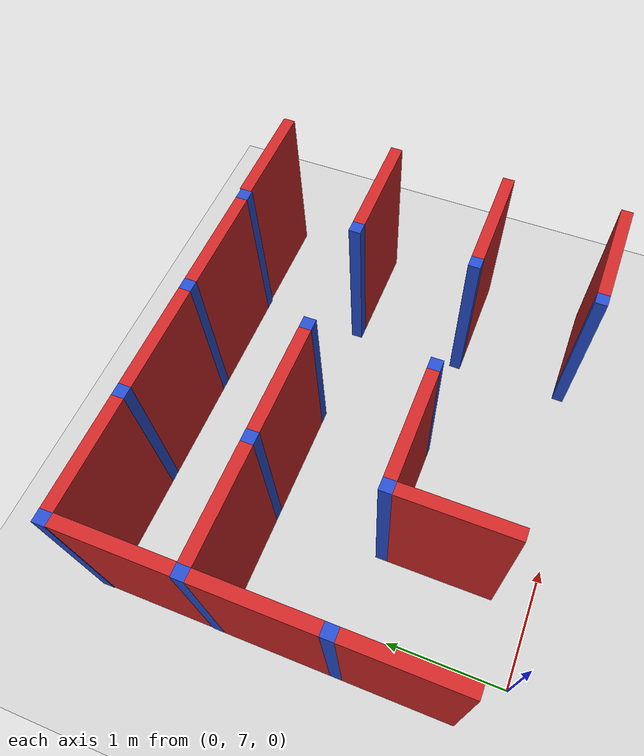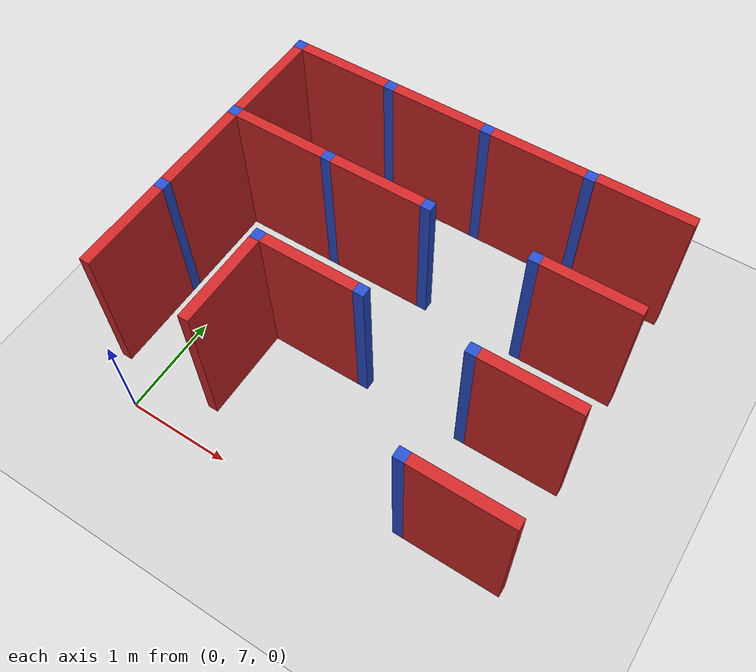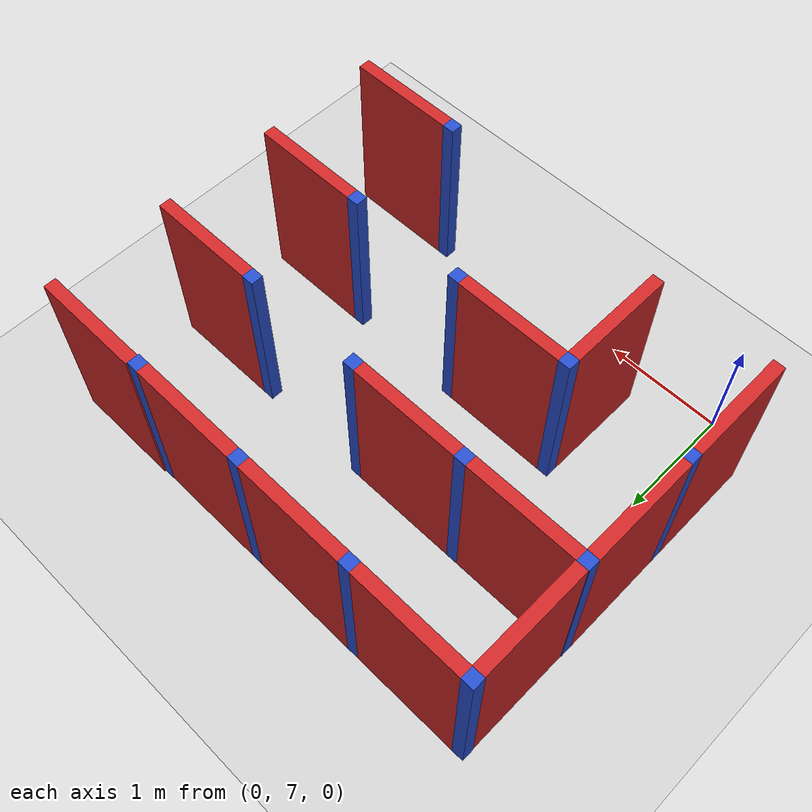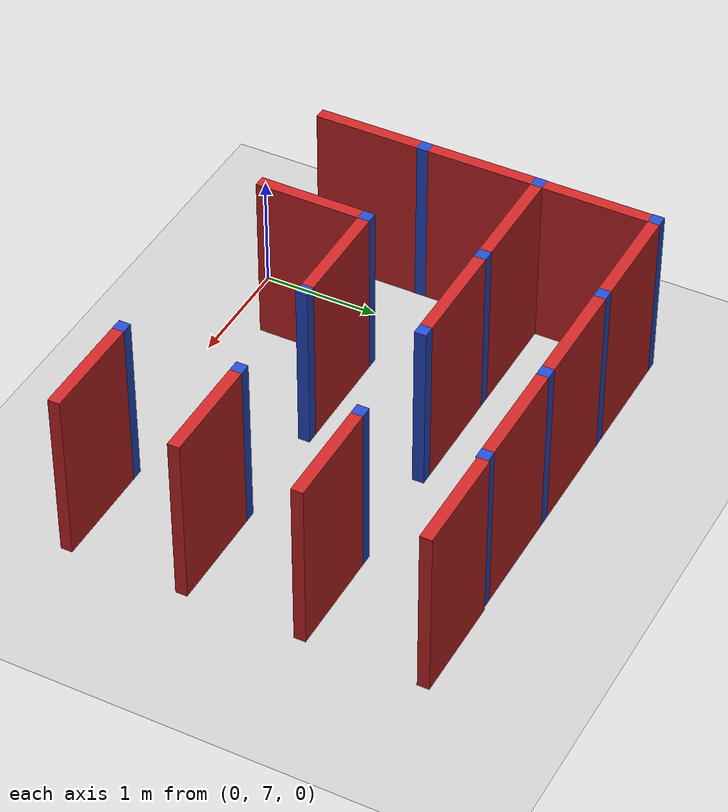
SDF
<sdf version="1.7">
 <world name="default">
  <model name="ground_plane">
   <static>1</static>
   <link name="link">
    <collision name="collision">
     <geometry><plane><normal>0 0 1</normal><size>100 100</size></plane></geometry>
     <surface><friction><ode><mu>100</mu><mu2>50</mu2></ode></friction></surface>
    </collision>
    <visual name="visual">
     <cast_shadows>0</cast_shadows>
     <geometry><plane><normal>0 0 1</normal><size>100 100</size></plane></geometry>
     <material>
      <script><uri>file://media/materials/scripts/gazebo.material</uri><name>Gazebo/Grey</name></script>
     </material>
    </visual>
   </link>
  </model>
  <model name="maze_demo">
   <link name="Joint_5_-5">
    <pose>5 -5 0 0 -0 0</pose>
    <visual name="Wall_2_Visual">
     <pose>0 0 0.75 0 -0 0</pose>
     <geometry><box><size>0.1 0.1 1.5</size></box></geometry>
     <material>
      <script><uri>file://media/materials/scripts/gazebo.material</uri><name>Gazebo/Blue</name></script>
      <ambient>0.996078 0.47451 0.0196078 1</ambient>
      <shader type="pixel"/>
     </material>
     <meta><layer>0</layer></meta>
    </visual>
    <collision name="Wall_2_Collision">
     <pose>0 0 0.75 0 -0 0</pose>
     <geometry><box><size>0.1 0.1 1.5</size></box></geometry>
     <surface>
      <friction>
       <ode><mu>1</mu><mu2>1</mu2><fdir1>0 0 0</fdir1><slip1>0</slip1><slip2>0</slip2></ode>
       <torsional>
        <coefficient>1</coefficient>
        <patch_radius>0</patch_radius>
        <surface_radius>0</surface_radius>
        <use_patch_radius>1</use_patch_radius>
        <ode><slip>0</slip></ode>
       </torsional>
      </friction>
      <bounce><restitution_coefficient>0</restitution_coefficient><threshold>1e+06</threshold></bounce>
      <contact>
       <collide_without_contact>0</collide_without_contact>
       <collide_without_contact_bitmask>1</collide_without_contact_bitmask>
       <collide_bitmask>1</collide_bitmask>
       <ode>
        <soft_cfm>0</soft_cfm>
        <soft_erp>0.2</soft_erp>
        <kp>1e+13</kp>
        <kd>1</kd>
        <max_vel>0.01</max_vel>
        <min_depth>0</min_depth>
       </ode>
       <bullet>
        <split_impulse>1</split_impulse>
        <split_impulse_penetration_threshold>-0.01</split_impulse_penetration_threshold>
        <soft_cfm>0</soft_cfm>
        <soft_erp>0.2</soft_erp>
        <kp>1e+13</kp>
        <kd>1</kd>
       </bullet>
      </contact>
     </surface>
    </collision>
   </link>
   <link name="Joint_5_-6">
    <pose>5 -6 0 0 -0 0</pose>
    <visual name="Wall_2_Visual">
     <pose>0 0 0.75 0 -0 0</pose>
     <geometry><box><size>0.1 0.1 1.5</size></box></geometry>
     <material>
      <script><uri>file://media/materials/scripts/gazebo.material</uri><name>Gazebo/Blue</name></script>
      <ambient>0.996078 0.47451 0.0196078 1</ambient>
      <shader type="pixel"/>
     </material>
     <meta><layer>0</layer></meta>
    </visual>
    <collision name="Wall_2_Collision">
     <pose>0 0 0.75 0 -0 0</pose>
     <geometry><box><size>0.1 0.1 1.5</size></box></geometry>
     <surface>
      <friction>
       <ode><mu>1</mu><mu2>1</mu2><fdir1>0 0 0</fdir1><slip1>0</slip1><slip2>0</slip2></ode>
       <torsional>
        <coefficient>1</coefficient>
        <patch_radius>0</patch_radius>
        <surface_radius>0</surface_radius>
        <use_patch_radius>1</use_patch_radius>
        <ode><slip>0</slip></ode>
       </torsional>
      </friction>
      <bounce><restitution_coefficient>0</restitution_coefficient><threshold>1e+06</threshold></bounce>
      <contact>
       <collide_without_contact>0</collide_without_contact>
       <collide_without_contact_bitmask>1</collide_without_contact_bitmask>
       <collide_bitmask>1</collide_bitmask>
       <ode>
        <soft_cfm>0</soft_cfm>
        <soft_erp>0.2</soft_erp>
        <kp>1e+13</kp>
        <kd>1</kd>
        <max_vel>0.01</max_vel>
        <min_depth>0</min_depth>
       </ode>
       <bullet>
        <split_impulse>1</split_impulse>
        <split_impulse_penetration_threshold>-0.01</split_impulse_penetration_threshold>
        <soft_cfm>0</soft_cfm>
        <soft_erp>0.2</soft_erp>
        <kp>1e+13</kp>
        <kd>1</kd>
       </bullet>
      </contact>
     </surface>
    </collision>
   </link>
   <link name="Joint_5_-7">
    <pose>5 -7 0 0 -0 0</pose>
    <visual name="Wall_2_Visual">
     <pose>0 0 0.75 0 -0 0</pose>
     <geometry><box><size>0.1 0.1 1.5</size></box></geometry>
     <material>
      <script><uri>file://media/materials/scripts/gazebo.material</uri><name>Gazebo/Blue</name></script>
      <ambient>0.996078 0.47451 0.0196078 1</ambient>
      <shader type="pixel"/>
     </material>
     <meta><layer>0</layer></meta>
    </visual>
    <collision name="Wall_2_Collision">
     <pose>0 0 0.75 0 -0 0</pose>
     <geometry><box><size>0.1 0.1 1.5</size></box></geometry>
     <surface>
      <friction>
       <ode><mu>1</mu><mu2>1</mu2><fdir1>0 0 0</fdir1><slip1>0</slip1><slip2>0</slip2></ode>
       <torsional>
        <coefficient>1</coefficient>
        <patch_radius>0</patch_radius>
        <surface_radius>0</surface_radius>
        <use_patch_radius>1</use_patch_radius>
        <ode><slip>0</slip></ode>
       </torsional>
      </friction>
      <bounce><restitution_coefficient>0</restitution_coefficient><threshold>1e+06</threshold></bounce>
      <contact>
       <collide_without_contact>0</collide_without_contact>
       <collide_without_contact_bitmask>1</collide_without_contact_bitmask>
       <collide_bitmask>1</collide_bitmask>
       <ode>
        <soft_cfm>0</soft_cfm>
        <soft_erp>0.2</soft_erp>
        <kp>1e+13</kp>
        <kd>1</kd>
        <max_vel>0.01</max_vel>
        <min_depth>0</min_depth>
       </ode>
       <bullet>
        <split_impulse>1</split_impulse>
        <split_impulse_penetration_threshold>-0.01</split_impulse_penetration_threshold>
        <soft_cfm>0</soft_cfm>
        <soft_erp>0.2</soft_erp>
        <kp>1e+13</kp>
        <kd>1</kd>
       </bullet>
      </contact>
     </surface>
    </collision>
   </link>
   <link name="Joint_6_-5">
    <pose>6 -5 0 0 -0 0</pose>
    <visual name="Wall_2_Visual">
     <pose>0 0 0.75 0 -0 0</pose>
     <geometry><box><size>0.1 0.1 1.5</size></box></geometry>
     <material>
      <script><uri>file://media/materials/scripts/gazebo.material</uri><name>Gazebo/Blue</name></script>
      <ambient>0.996078 0.47451 0.0196078 1</ambient>
      <shader type="pixel"/>
     </material>
     <meta><layer>0</layer></meta>
    </visual>
    <collision name="Wall_2_Collision">
     <pose>0 0 0.75 0 -0 0</pose>
     <geometry><box><size>0.1 0.1 1.5</size></box></geometry>
     <surface>
      <friction>
       <ode><mu>1</mu><mu2>1</mu2><fdir1>0 0 0</fdir1><slip1>0</slip1><slip2>0</slip2></ode>
       <torsional>
        <coefficient>1</coefficient>
        <patch_radius>0</patch_radius>
        <surface_radius>0</surface_radius>
        <use_patch_radius>1</use_patch_radius>
        <ode><slip>0</slip></ode>
       </torsional>
      </friction>
      <bounce><restitution_coefficient>0</restitution_coefficient><threshold>1e+06</threshold></bounce>
      <contact>
       <collide_without_contact>0</collide_without_contact>
       <collide_without_contact_bitmask>1</collide_without_contact_bitmask>
       <collide_bitmask>1</collide_bitmask>
       <ode>
        <soft_cfm>0</soft_cfm>
        <soft_erp>0.2</soft_erp>
        <kp>1e+13</kp>
        <kd>1</kd>
        <max_vel>0.01</max_vel>
        <min_depth>0</min_depth>
       </ode>
       <bullet>
        <split_impulse>1</split_impulse>
        <split_impulse_penetration_threshold>-0.01</split_impulse_penetration_threshold>
        <soft_cfm>0</soft_cfm>
        <soft_erp>0.2</soft_erp>
        <kp>1e+13</kp>
        <kd>1</kd>
       </bullet>
      </contact>
     </surface>
    </collision>
   </link>
   <link name="Joint_6_-6">
    <pose>6 -6 0 0 -0 0</pose>
    <visual name="Wall_2_Visual">
     <pose>0 0 0.75 0 -0 0</pose>
     <geometry><box><size>0.1 0.1 1.5</size></box></geometry>
     <material>
      <script><uri>file://media/materials/scripts/gazebo.material</uri><name>Gazebo/Blue</name></script>
      <ambient>0.996078 0.47451 0.0196078 1</ambient>
      <shader type="pixel"/>
     </material>
     <meta><layer>0</layer></meta>
    </visual>
    <collision name="Wall_2_Collision">
     <pose>0 0 0.75 0 -0 0</pose>
     <geometry><box><size>0.1 0.1 1.5</size></box></geometry>
     <surface>
      <friction>
       <ode><mu>1</mu><mu2>1</mu2><fdir1>0 0 0</fdir1><slip1>0</slip1><slip2>0</slip2></ode>
       <torsional>
        <coefficient>1</coefficient>
        <patch_radius>0</patch_radius>
        <surface_radius>0</surface_radius>
        <use_patch_radius>1</use_patch_radius>
        <ode><slip>0</slip></ode>
       </torsional>
      </friction>
      <bounce><restitution_coefficient>0</restitution_coefficient><threshold>1e+06</threshold></bounce>
      <contact>
       <collide_without_contact>0</collide_without_contact>
       <collide_without_contact_bitmask>1</collide_without_contact_bitmask>
       <collide_bitmask>1</collide_bitmask>
       <ode>
        <soft_cfm>0</soft_cfm>
        <soft_erp>0.2</soft_erp>
        <kp>1e+13</kp>
        <kd>1</kd>
        <max_vel>0.01</max_vel>
        <min_depth>0</min_depth>
       </ode>
       <bullet>
        <split_impulse>1</split_impulse>
        <split_impulse_penetration_threshold>-0.01</split_impulse_penetration_threshold>
        <soft_cfm>0</soft_cfm>
        <soft_erp>0.2</soft_erp>
        <kp>1e+13</kp>
        <kd>1</kd>
       </bullet>
      </contact>
     </surface>
    </collision>
   </link>
   <link name="Joint_6_-7">
    <pose>6 -7 0 0 -0 0</pose>
    <visual name="Wall_2_Visual">
     <pose>0 0 0.75 0 -0 0</pose>
     <geometry><box><size>0.1 0.1 1.5</size></box></geometry>
     <material>
      <script><uri>file://media/materials/scripts/gazebo.material</uri><name>Gazebo/Blue</name></script>
      <ambient>0.996078 0.47451 0.0196078 1</ambient>
      <shader type="pixel"/>
     </material>
     <meta><layer>0</layer></meta>
    </visual>
    <collision name="Wall_2_Collision">
     <pose>0 0 0.75 0 -0 0</pose>
     <geometry><box><size>0.1 0.1 1.5</size></box></geometry>
     <surface>
      <friction>
       <ode><mu>1</mu><mu2>1</mu2><fdir1>0 0 0</fdir1><slip1>0</slip1><slip2>0</slip2></ode>
       <torsional>
        <coefficient>1</coefficient>
        <patch_radius>0</patch_radius>
        <surface_radius>0</surface_radius>
        <use_patch_radius>1</use_patch_radius>
        <ode><slip>0</slip></ode>
       </torsional>
      </friction>
      <bounce><restitution_coefficient>0</restitution_coefficient><threshold>1e+06</threshold></bounce>
      <contact>
       <collide_without_contact>0</collide_without_contact>
       <collide_without_contact_bitmask>1</collide_without_contact_bitmask>
       <collide_bitmask>1</collide_bitmask>
       <ode>
        <soft_cfm>0</soft_cfm>
        <soft_erp>0.2</soft_erp>
        <kp>1e+13</kp>
        <kd>1</kd>
        <max_vel>0.01</max_vel>
        <min_depth>0</min_depth>
       </ode>
       <bullet>
        <split_impulse>1</split_impulse>
        <split_impulse_penetration_threshold>-0.01</split_impulse_penetration_threshold>
        <soft_cfm>0</soft_cfm>
        <soft_erp>0.2</soft_erp>
        <kp>1e+13</kp>
        <kd>1</kd>
       </bullet>
      </contact>
     </surface>
    </collision>
   </link>
   <link name="Joint_7_-5">
    <pose>7 -5 0 0 -0 0</pose>
    <visual name="Wall_2_Visual">
     <pose>0 0 0.75 0 -0 0</pose>
     <geometry><box><size>0.1 0.1 1.5</size></box></geometry>
     <material>
      <script><uri>file://media/materials/scripts/gazebo.material</uri><name>Gazebo/Blue</name></script>
      <ambient>0.996078 0.47451 0.0196078 1</ambient>
      <shader type="pixel"/>
     </material>
     <meta><layer>0</layer></meta>
    </visual>
    <collision name="Wall_2_Collision">
     <pose>0 0 0.75 0 -0 0</pose>
     <geometry><box><size>0.1 0.1 1.5</size></box></geometry>
     <surface>
      <friction>
       <ode><mu>1</mu><mu2>1</mu2><fdir1>0 0 0</fdir1><slip1>0</slip1><slip2>0</slip2></ode>
       <torsional>
        <coefficient>1</coefficient>
        <patch_radius>0</patch_radius>
        <surface_radius>0</surface_radius>
        <use_patch_radius>1</use_patch_radius>
        <ode><slip>0</slip></ode>
       </torsional>
      </friction>
      <bounce><restitution_coefficient>0</restitution_coefficient><threshold>1e+06</threshold></bounce>
      <contact>
       <collide_without_contact>0</collide_without_contact>
       <collide_without_contact_bitmask>1</collide_without_contact_bitmask>
       <collide_bitmask>1</collide_bitmask>
       <ode>
        <soft_cfm>0</soft_cfm>
        <soft_erp>0.2</soft_erp>
        <kp>1e+13</kp>
        <kd>1</kd>
        <max_vel>0.01</max_vel>
        <min_depth>0</min_depth>
       </ode>
       <bullet>
        <split_impulse>1</split_impulse>
        <split_impulse_penetration_threshold>-0.01</split_impulse_penetration_threshold>
        <soft_cfm>0</soft_cfm>
        <soft_erp>0.2</soft_erp>
        <kp>1e+13</kp>
        <kd>1</kd>
       </bullet>
      </contact>
     </surface>
    </collision>
   </link>
   <link name="Joint_7_-6">
    <pose>7 -6 0 0 -0 0</pose>
    <visual name="Wall_2_Visual">
     <pose>0 0 0.75 0 -0 0</pose>
     <geometry><box><size>0.1 0.1 1.5</size></box></geometry>
     <material>
      <script><uri>file://media/materials/scripts/gazebo.material</uri><name>Gazebo/Blue</name></script>
      <ambient>0.996078 0.47451 0.0196078 1</ambient>
      <shader type="pixel"/>
     </material>
     <meta><layer>0</layer></meta>
    </visual>
    <collision name="Wall_2_Collision">
     <pose>0 0 0.75 0 -0 0</pose>
     <geometry><box><size>0.1 0.1 1.5</size></box></geometry>
     <surface>
      <friction>
       <ode><mu>1</mu><mu2>1</mu2><fdir1>0 0 0</fdir1><slip1>0</slip1><slip2>0</slip2></ode>
       <torsional>
        <coefficient>1</coefficient>
        <patch_radius>0</patch_radius>
        <surface_radius>0</surface_radius>
        <use_patch_radius>1</use_patch_radius>
        <ode><slip>0</slip></ode>
       </torsional>
      </friction>
      <bounce><restitution_coefficient>0</restitution_coefficient><threshold>1e+06</threshold></bounce>
      <contact>
       <collide_without_contact>0</collide_without_contact>
       <collide_without_contact_bitmask>1</collide_without_contact_bitmask>
       <collide_bitmask>1</collide_bitmask>
       <ode>
        <soft_cfm>0</soft_cfm>
        <soft_erp>0.2</soft_erp>
        <kp>1e+13</kp>
        <kd>1</kd>
        <max_vel>0.01</max_vel>
        <min_depth>0</min_depth>
       </ode>
       <bullet>
        <split_impulse>1</split_impulse>
        <split_impulse_penetration_threshold>-0.01</split_impulse_penetration_threshold>
        <soft_cfm>0</soft_cfm>
        <soft_erp>0.2</soft_erp>
        <kp>1e+13</kp>
        <kd>1</kd>
       </bullet>
      </contact>
     </surface>
    </collision>
   </link>
   <link name="Joint_7_-7">
    <pose>7 -7 0 0 -0 0</pose>
    <visual name="Wall_2_Visual">
     <pose>0 0 0.75 0 -0 0</pose>
     <geometry><box><size>0.1 0.1 1.5</size></box></geometry>
     <material>
      <script><uri>file://media/materials/scripts/gazebo.material</uri><name>Gazebo/Blue</name></script>
      <ambient>0.996078 0.47451 0.0196078 1</ambient>
      <shader type="pixel"/>
     </material>
     <meta><layer>0</layer></meta>
    </visual>
    <collision name="Wall_2_Collision">
     <pose>0 0 0.75 0 -0 0</pose>
     <geometry><box><size>0.1 0.1 1.5</size></box></geometry>
     <surface>
      <friction>
       <ode><mu>1</mu><mu2>1</mu2><fdir1>0 0 0</fdir1><slip1>0</slip1><slip2>0</slip2></ode>
       <torsional>
        <coefficient>1</coefficient>
        <patch_radius>0</patch_radius>
        <surface_radius>0</surface_radius>
        <use_patch_radius>1</use_patch_radius>
        <ode><slip>0</slip></ode>
       </torsional>
      </friction>
      <bounce><restitution_coefficient>0</restitution_coefficient><threshold>1e+06</threshold></bounce>
      <contact>
       <collide_without_contact>0</collide_without_contact>
       <collide_without_contact_bitmask>1</collide_without_contact_bitmask>
       <collide_bitmask>1</collide_bitmask>
       <ode>
        <soft_cfm>0</soft_cfm>
        <soft_erp>0.2</soft_erp>
        <kp>1e+13</kp>
        <kd>1</kd>
        <max_vel>0.01</max_vel>
        <min_depth>0</min_depth>
       </ode>
       <bullet>
        <split_impulse>1</split_impulse>
        <split_impulse_penetration_threshold>-0.01</split_impulse_penetration_threshold>
        <soft_cfm>0</soft_cfm>
        <soft_erp>0.2</soft_erp>
        <kp>1e+13</kp>
        <kd>1</kd>
       </bullet>
      </contact>
     </surface>
    </collision>
   </link>
   <link name="Joint_8_-5">
    <pose>8 -5 0 0 -0 0</pose>
    <visual name="Wall_2_Visual">
     <pose>0 0 0.75 0 -0 0</pose>
     <geometry><box><size>0.1 0.1 1.5</size></box></geometry>
     <material>
      <script><uri>file://media/materials/scripts/gazebo.material</uri><name>Gazebo/Blue</name></script>
      <ambient>0.996078 0.47451 0.0196078 1</ambient>
      <shader type="pixel"/>
     </material>
     <meta><layer>0</layer></meta>
    </visual>
    <collision name="Wall_2_Collision">
     <pose>0 0 0.75 0 -0 0</pose>
     <geometry><box><size>0.1 0.1 1.5</size></box></geometry>
     <surface>
      <friction>
       <ode><mu>1</mu><mu2>1</mu2><fdir1>0 0 0</fdir1><slip1>0</slip1><slip2>0</slip2></ode>
       <torsional>
        <coefficient>1</coefficient>
        <patch_radius>0</patch_radius>
        <surface_radius>0</surface_radius>
        <use_patch_radius>1</use_patch_radius>
        <ode><slip>0</slip></ode>
       </torsional>
      </friction>
      <bounce><restitution_coefficient>0</restitution_coefficient><threshold>1e+06</threshold></bounce>
      <contact>
       <collide_without_contact>0</collide_without_contact>
       <collide_without_contact_bitmask>1</collide_without_contact_bitmask>
       <collide_bitmask>1</collide_bitmask>
       <ode>
        <soft_cfm>0</soft_cfm>
        <soft_erp>0.2</soft_erp>
        <kp>1e+13</kp>
        <kd>1</kd>
        <max_vel>0.01</max_vel>
        <min_depth>0</min_depth>
       </ode>
       <bullet>
        <split_impulse>1</split_impulse>
        <split_impulse_penetration_threshold>-0.01</split_impulse_penetration_threshold>
        <soft_cfm>0</soft_cfm>
        <soft_erp>0.2</soft_erp>
        <kp>1e+13</kp>
        <kd>1</kd>
       </bullet>
      </contact>
     </surface>
    </collision>
   </link>
   <link name="Joint_8_-6">
    <pose>8 -6 0 0 -0 0</pose>
    <visual name="Wall_2_Visual">
     <pose>0 0 0.75 0 -0 0</pose>
     <geometry><box><size>0.1 0.1 1.5</size></box></geometry>
     <material>
      <script><uri>file://media/materials/scripts/gazebo.material</uri><name>Gazebo/Blue</name></script>
      <ambient>0.996078 0.47451 0.0196078 1</ambient>
      <shader type="pixel"/>
     </material>
     <meta><layer>0</layer></meta>
    </visual>
    <collision name="Wall_2_Collision">
     <pose>0 0 0.75 0 -0 0</pose>
     <geometry><box><size>0.1 0.1 1.5</size></box></geometry>
     <surface>
      <friction>
       <ode><mu>1</mu><mu2>1</mu2><fdir1>0 0 0</fdir1><slip1>0</slip1><slip2>0</slip2></ode>
       <torsional>
        <coefficient>1</coefficient>
        <patch_radius>0</patch_radius>
        <surface_radius>0</surface_radius>
        <use_patch_radius>1</use_patch_radius>
        <ode><slip>0</slip></ode>
       </torsional>
      </friction>
      <bounce><restitution_coefficient>0</restitution_coefficient><threshold>1e+06</threshold></bounce>
      <contact>
       <collide_without_contact>0</collide_without_contact>
       <collide_without_contact_bitmask>1</collide_without_contact_bitmask>
       <collide_bitmask>1</collide_bitmask>
       <ode>
        <soft_cfm>0</soft_cfm>
        <soft_erp>0.2</soft_erp>
        <kp>1e+13</kp>
        <kd>1</kd>
        <max_vel>0.01</max_vel>
        <min_depth>0</min_depth>
       </ode>
       <bullet>
        <split_impulse>1</split_impulse>
        <split_impulse_penetration_threshold>-0.01</split_impulse_penetration_threshold>
        <soft_cfm>0</soft_cfm>
        <soft_erp>0.2</soft_erp>
        <kp>1e+13</kp>
        <kd>1</kd>
       </bullet>
      </contact>
     </surface>
    </collision>
   </link>
   <link name="Joint_8_-7">
    <pose>8 -7 0 0 -0 0</pose>
    <visual name="Wall_2_Visual">
     <pose>0 0 0.75 0 -0 0</pose>
     <geometry><box><size>0.1 0.1 1.5</size></box></geometry>
     <material>
      <script><uri>file://media/materials/scripts/gazebo.material</uri><name>Gazebo/Blue</name></script>
      <ambient>0.996078 0.47451 0.0196078 1</ambient>
      <shader type="pixel"/>
     </material>
     <meta><layer>0</layer></meta>
    </visual>
    <collision name="Wall_2_Collision">
     <pose>0 0 0.75 0 -0 0</pose>
     <geometry><box><size>0.1 0.1 1.5</size></box></geometry>
     <surface>
      <friction>
       <ode><mu>1</mu><mu2>1</mu2><fdir1>0 0 0</fdir1><slip1>0</slip1><slip2>0</slip2></ode>
       <torsional>
        <coefficient>1</coefficient>
        <patch_radius>0</patch_radius>
        <surface_radius>0</surface_radius>
        <use_patch_radius>1</use_patch_radius>
        <ode><slip>0</slip></ode>
       </torsional>
      </friction>
      <bounce><restitution_coefficient>0</restitution_coefficient><threshold>1e+06</threshold></bounce>
      <contact>
       <collide_without_contact>0</collide_without_contact>
       <collide_without_contact_bitmask>1</collide_without_contact_bitmask>
       <collide_bitmask>1</collide_bitmask>
       <ode>
        <soft_cfm>0</soft_cfm>
        <soft_erp>0.2</soft_erp>
        <kp>1e+13</kp>
        <kd>1</kd>
        <max_vel>0.01</max_vel>
        <min_depth>0</min_depth>
       </ode>
       <bullet>
        <split_impulse>1</split_impulse>
        <split_impulse_penetration_threshold>-0.01</split_impulse_penetration_threshold>
        <soft_cfm>0</soft_cfm>
        <soft_erp>0.2</soft_erp>
        <kp>1e+13</kp>
        <kd>1</kd>
       </bullet>
      </contact>
     </surface>
    </collision>
   </link>
   <link name="Joint_8_-8">
    <pose>8 -8 0 0 -0 0</pose>
    <visual name="Wall_2_Visual">
     <pose>0 0 0.75 0 -0 0</pose>
     <geometry><box><size>0.1 0.1 1.5</size></box></geometry>
     <material>
      <script><uri>file://media/materials/scripts/gazebo.material</uri><name>Gazebo/Blue</name></script>
      <ambient>0.996078 0.47451 0.0196078 1</ambient>
      <shader type="pixel"/>
     </material>
     <meta><layer>0</layer></meta>
    </visual>
    <collision name="Wall_2_Collision">
     <pose>0 0 0.75 0 -0 0</pose>
     <geometry><box><size>0.1 0.1 1.5</size></box></geometry>
     <surface>
      <friction>
       <ode><mu>1</mu><mu2>1</mu2><fdir1>0 0 0</fdir1><slip1>0</slip1><slip2>0</slip2></ode>
       <torsional>
        <coefficient>1</coefficient>
        <patch_radius>0</patch_radius>
        <surface_radius>0</surface_radius>
        <use_patch_radius>1</use_patch_radius>
        <ode><slip>0</slip></ode>
       </torsional>
      </friction>
      <bounce><restitution_coefficient>0</restitution_coefficient><threshold>1e+06</threshold></bounce>
      <contact>
       <collide_without_contact>0</collide_without_contact>
       <collide_without_contact_bitmask>1</collide_without_contact_bitmask>
       <collide_bitmask>1</collide_bitmask>
       <ode>
        <soft_cfm>0</soft_cfm>
        <soft_erp>0.2</soft_erp>
        <kp>1e+13</kp>
        <kd>1</kd>
        <max_vel>0.01</max_vel>
        <min_depth>0</min_depth>
       </ode>
       <bullet>
        <split_impulse>1</split_impulse>
        <split_impulse_penetration_threshold>-0.01</split_impulse_penetration_threshold>
        <soft_cfm>0</soft_cfm>
        <soft_erp>0.2</soft_erp>
        <kp>1e+13</kp>
        <kd>1</kd>
       </bullet>
      </contact>
     </surface>
    </collision>
   </link>
   <link name="Wall_3_5_v">
    <pose>5.0039 -5.49999 0 0 -0 1.5708</pose>
    <visual name="Wall_0_Visual">
     <pose>0 0 0.75 0 -0 0</pose>
     <geometry><box><size>0.9 0.1 1.5</size></box></geometry>
     <material>
      <script><uri>file://media/materials/scripts/gazebo.material</uri><name>Gazebo/Red</name></script>
      <ambient>0.921569 0.807843 0.615686 1</ambient>
      <shader type="pixel"/>
     </material>
     <meta><layer>0</layer></meta>
    </visual>
    <collision name="Wall_0_Collision">
     <pose>0 0 0.75 0 -0 0</pose>
     <geometry><box><size>0.9 0.1 1.5</size></box></geometry>
     <surface>
      <friction>
       <ode><mu>1</mu><mu2>1</mu2><fdir1>0 0 0</fdir1><slip1>0</slip1><slip2>0</slip2></ode>
       <torsional>
        <coefficient>1</coefficient>
        <patch_radius>0</patch_radius>
        <surface_radius>0</surface_radius>
        <use_patch_radius>1</use_patch_radius>
        <ode><slip>0</slip></ode>
       </torsional>
      </friction>
      <bounce><restitution_coefficient>0</restitution_coefficient><threshold>1e+06</threshold></bounce>
      <contact>
       <collide_without_contact>0</collide_without_contact>
       <collide_without_contact_bitmask>1</collide_without_contact_bitmask>
       <collide_bitmask>1</collide_bitmask>
       <ode>
        <soft_cfm>0</soft_cfm>
        <soft_erp>0.2</soft_erp>
        <kp>1e+13</kp>
        <kd>1</kd>
        <max_vel>0.01</max_vel>
        <min_depth>0</min_depth>
       </ode>
       <bullet>
        <split_impulse>1</split_impulse>
        <split_impulse_penetration_threshold>-0.01</split_impulse_penetration_threshold>
        <soft_cfm>0</soft_cfm>
        <soft_erp>0.2</soft_erp>
        <kp>1e+13</kp>
        <kd>1</kd>
       </bullet>
      </contact>
     </surface>
    </collision>
   </link>
   <link name="Wall_5_5_h">
    <pose>5.5 -5 0 0 -0 0</pose>
    <visual name="Wall_0_Visual">
     <pose>0 0 0.75 0 -0 0</pose>
     <geometry><box><size>0.9 0.1 1.5</size></box></geometry>
     <material>
      <script><uri>file://media/materials/scripts/gazebo.material</uri><name>Gazebo/Red</name></script>
      <ambient>0.921569 0.807843 0.615686 1</ambient>
      <shader type="pixel"/>
     </material>
     <meta><layer>0</layer></meta>
    </visual>
    <collision name="Wall_0_Collision">
     <pose>0 0 0.75 0 -0 0</pose>
     <geometry><box><size>0.9 0.1 1.5</size></box></geometry>
     <surface>
      <friction>
       <ode><mu>1</mu><mu2>1</mu2><fdir1>0 0 0</fdir1><slip1>0</slip1><slip2>0</slip2></ode>
       <torsional>
        <coefficient>1</coefficient>
        <patch_radius>0</patch_radius>
        <surface_radius>0</surface_radius>
        <use_patch_radius>1</use_patch_radius>
        <ode><slip>0</slip></ode>
       </torsional>
      </friction>
      <bounce><restitution_coefficient>0</restitution_coefficient><threshold>1e+06</threshold></bounce>
      <contact>
       <collide_without_contact>0</collide_without_contact>
       <collide_without_contact_bitmask>1</collide_without_contact_bitmask>
       <collide_bitmask>1</collide_bitmask>
       <ode>
        <soft_cfm>0</soft_cfm>
        <soft_erp>0.2</soft_erp>
        <kp>1e+13</kp>
        <kd>1</kd>
        <max_vel>0.01</max_vel>
        <min_depth>0</min_depth>
       </ode>
       <bullet>
        <split_impulse>1</split_impulse>
        <split_impulse_penetration_threshold>-0.01</split_impulse_penetration_threshold>
        <soft_cfm>0</soft_cfm>
        <soft_erp>0.2</soft_erp>
        <kp>1e+13</kp>
        <kd>1</kd>
       </bullet>
      </contact>
     </surface>
    </collision>
   </link>
   <link name="Wall_5_6_h">
    <pose>5.5 -6 0 0 -0 0</pose>
    <visual name="Wall_0_Visual">
     <pose>0 0 0.75 0 -0 0</pose>
     <geometry><box><size>0.9 0.1 1.5</size></box></geometry>
     <material>
      <script><uri>file://media/materials/scripts/gazebo.material</uri><name>Gazebo/Red</name></script>
      <ambient>0.921569 0.807843 0.615686 1</ambient>
      <shader type="pixel"/>
     </material>
     <meta><layer>0</layer></meta>
    </visual>
    <collision name="Wall_0_Collision">
     <pose>0 0 0.75 0 -0 0</pose>
     <geometry><box><size>0.9 0.1 1.5</size></box></geometry>
     <surface>
      <friction>
       <ode><mu>1</mu><mu2>1</mu2><fdir1>0 0 0</fdir1><slip1>0</slip1><slip2>0</slip2></ode>
       <torsional>
        <coefficient>1</coefficient>
        <patch_radius>0</patch_radius>
        <surface_radius>0</surface_radius>
        <use_patch_radius>1</use_patch_radius>
        <ode><slip>0</slip></ode>
       </torsional>
      </friction>
      <bounce><restitution_coefficient>0</restitution_coefficient><threshold>1e+06</threshold></bounce>
      <contact>
       <collide_without_contact>0</collide_without_contact>
       <collide_without_contact_bitmask>1</collide_without_contact_bitmask>
       <collide_bitmask>1</collide_bitmask>
       <ode>
        <soft_cfm>0</soft_cfm>
        <soft_erp>0.2</soft_erp>
        <kp>1e+13</kp>
        <kd>1</kd>
        <max_vel>0.01</max_vel>
        <min_depth>0</min_depth>
       </ode>
       <bullet>
        <split_impulse>1</split_impulse>
        <split_impulse_penetration_threshold>-0.01</split_impulse_penetration_threshold>
        <soft_cfm>0</soft_cfm>
        <soft_erp>0.2</soft_erp>
        <kp>1e+13</kp>
        <kd>1</kd>
       </bullet>
      </contact>
     </surface>
    </collision>
   </link>
   <link name="Wall_5_6_v">
    <pose>5 -6.5 0 0 -0 1.5708</pose>
    <visual name="Wall_0_Visual">
     <pose>0 0 0.75 0 -0 0</pose>
     <geometry><box><size>0.9 0.1 1.5</size></box></geometry>
     <material>
      <script><uri>file://media/materials/scripts/gazebo.material</uri><name>Gazebo/Red</name></script>
      <ambient>0.921569 0.807843 0.615686 1</ambient>
      <shader type="pixel"/>
     </material>
     <meta><layer>0</layer></meta>
    </visual>
    <collision name="Wall_0_Collision">
     <pose>0 0 0.75 0 -0 0</pose>
     <geometry><box><size>0.9 0.1 1.5</size></box></geometry>
     <surface>
      <friction>
       <ode><mu>1</mu><mu2>1</mu2><fdir1>0 0 0</fdir1><slip1>0</slip1><slip2>0</slip2></ode>
       <torsional>
        <coefficient>1</coefficient>
        <patch_radius>0</patch_radius>
        <surface_radius>0</surface_radius>
        <use_patch_radius>1</use_patch_radius>
        <ode><slip>0</slip></ode>
       </torsional>
      </friction>
      <bounce><restitution_coefficient>0</restitution_coefficient><threshold>1e+06</threshold></bounce>
      <contact>
       <collide_without_contact>0</collide_without_contact>
       <collide_without_contact_bitmask>1</collide_without_contact_bitmask>
       <collide_bitmask>1</collide_bitmask>
       <ode>
        <soft_cfm>0</soft_cfm>
        <soft_erp>0.2</soft_erp>
        <kp>1e+13</kp>
        <kd>1</kd>
        <max_vel>0.01</max_vel>
        <min_depth>0</min_depth>
       </ode>
       <bullet>
        <split_impulse>1</split_impulse>
        <split_impulse_penetration_threshold>-0.01</split_impulse_penetration_threshold>
        <soft_cfm>0</soft_cfm>
        <soft_erp>0.2</soft_erp>
        <kp>1e+13</kp>
        <kd>1</kd>
       </bullet>
      </contact>
     </surface>
    </collision>
   </link>
   <link name="Wall_5_7_v">
    <pose>5 -7.5 0 0 -0 1.5708</pose>
    <visual name="Wall_0_Visual">
     <pose>0 0 0.75 0 -0 0</pose>
     <geometry><box><size>0.9 0.1 1.5</size></box></geometry>
     <material>
      <script><uri>file://media/materials/scripts/gazebo.material</uri><name>Gazebo/Red</name></script>
      <ambient>0.921569 0.807843 0.615686 1</ambient>
      <shader type="pixel"/>
     </material>
     <meta><layer>0</layer></meta>
    </visual>
    <collision name="Wall_0_Collision">
     <pose>0 0 0.75 0 -0 0</pose>
     <geometry><box><size>0.9 0.1 1.5</size></box></geometry>
     <surface>
      <friction>
       <ode><mu>1</mu><mu2>1</mu2><fdir1>0 0 0</fdir1><slip1>0</slip1><slip2>0</slip2></ode>
       <torsional>
        <coefficient>1</coefficient>
        <patch_radius>0</patch_radius>
        <surface_radius>0</surface_radius>
        <use_patch_radius>1</use_patch_radius>
        <ode><slip>0</slip></ode>
       </torsional>
      </friction>
      <bounce><restitution_coefficient>0</restitution_coefficient><threshold>1e+06</threshold></bounce>
      <contact>
       <collide_without_contact>0</collide_without_contact>
       <collide_without_contact_bitmask>1</collide_without_contact_bitmask>
       <collide_bitmask>1</collide_bitmask>
       <ode>
        <soft_cfm>0</soft_cfm>
        <soft_erp>0.2</soft_erp>
        <kp>1e+13</kp>
        <kd>1</kd>
        <max_vel>0.01</max_vel>
        <min_depth>0</min_depth>
       </ode>
       <bullet>
        <split_impulse>1</split_impulse>
        <split_impulse_penetration_threshold>-0.01</split_impulse_penetration_threshold>
        <soft_cfm>0</soft_cfm>
        <soft_erp>0.2</soft_erp>
        <kp>1e+13</kp>
        <kd>1</kd>
       </bullet>
      </contact>
     </surface>
    </collision>
   </link>
   <link name="Wall_6_5_h">
    <pose>6.5 -5 0 0 -0 0</pose>
    <visual name="Wall_0_Visual">
     <pose>0 0 0.75 0 -0 0</pose>
     <geometry><box><size>0.9 0.1 1.5</size></box></geometry>
     <material>
      <script><uri>file://media/materials/scripts/gazebo.material</uri><name>Gazebo/Red</name></script>
      <ambient>0.921569 0.807843 0.615686 1</ambient>
      <shader type="pixel"/>
     </material>
     <meta><layer>0</layer></meta>
    </visual>
    <collision name="Wall_0_Collision">
     <pose>0 0 0.75 0 -0 0</pose>
     <geometry><box><size>0.9 0.1 1.5</size></box></geometry>
     <surface>
      <friction>
       <ode><mu>1</mu><mu2>1</mu2><fdir1>0 0 0</fdir1><slip1>0</slip1><slip2>0</slip2></ode>
       <torsional>
        <coefficient>1</coefficient>
        <patch_radius>0</patch_radius>
        <surface_radius>0</surface_radius>
        <use_patch_radius>1</use_patch_radius>
        <ode><slip>0</slip></ode>
       </torsional>
      </friction>
      <bounce><restitution_coefficient>0</restitution_coefficient><threshold>1e+06</threshold></bounce>
      <contact>
       <collide_without_contact>0</collide_without_contact>
       <collide_without_contact_bitmask>1</collide_without_contact_bitmask>
       <collide_bitmask>1</collide_bitmask>
       <ode>
        <soft_cfm>0</soft_cfm>
        <soft_erp>0.2</soft_erp>
        <kp>1e+13</kp>
        <kd>1</kd>
        <max_vel>0.01</max_vel>
        <min_depth>0</min_depth>
       </ode>
       <bullet>
        <split_impulse>1</split_impulse>
        <split_impulse_penetration_threshold>-0.01</split_impulse_penetration_threshold>
        <soft_cfm>0</soft_cfm>
        <soft_erp>0.2</soft_erp>
        <kp>1e+13</kp>
        <kd>1</kd>
       </bullet>
      </contact>
     </surface>
    </collision>
   </link>
   <link name="Wall_6_6_h">
    <pose>6.5 -6 0 0 -0 0</pose>
    <visual name="Wall_0_Visual">
     <pose>0 0 0.75 0 -0 0</pose>
     <geometry><box><size>0.9 0.1 1.5</size></box></geometry>
     <material>
      <script><uri>file://media/materials/scripts/gazebo.material</uri><name>Gazebo/Red</name></script>
      <ambient>0.921569 0.807843 0.615686 1</ambient>
      <shader type="pixel"/>
     </material>
     <meta><layer>0</layer></meta>
    </visual>
    <collision name="Wall_0_Collision">
     <pose>0 0 0.75 0 -0 0</pose>
     <geometry><box><size>0.9 0.1 1.5</size></box></geometry>
     <surface>
      <friction>
       <ode><mu>1</mu><mu2>1</mu2><fdir1>0 0 0</fdir1><slip1>0</slip1><slip2>0</slip2></ode>
       <torsional>
        <coefficient>1</coefficient>
        <patch_radius>0</patch_radius>
        <surface_radius>0</surface_radius>
        <use_patch_radius>1</use_patch_radius>
        <ode><slip>0</slip></ode>
       </torsional>
      </friction>
      <bounce><restitution_coefficient>0</restitution_coefficient><threshold>1e+06</threshold></bounce>
      <contact>
       <collide_without_contact>0</collide_without_contact>
       <collide_without_contact_bitmask>1</collide_without_contact_bitmask>
       <collide_bitmask>1</collide_bitmask>
       <ode>
        <soft_cfm>0</soft_cfm>
        <soft_erp>0.2</soft_erp>
        <kp>1e+13</kp>
        <kd>1</kd>
        <max_vel>0.01</max_vel>
        <min_depth>0</min_depth>
       </ode>
       <bullet>
        <split_impulse>1</split_impulse>
        <split_impulse_penetration_threshold>-0.01</split_impulse_penetration_threshold>
        <soft_cfm>0</soft_cfm>
        <soft_erp>0.2</soft_erp>
        <kp>1e+13</kp>
        <kd>1</kd>
       </bullet>
      </contact>
     </surface>
    </collision>
   </link>
   <link name="Wall_6_7_h">
    <pose>6.5 -7 0 0 -0 0</pose>
    <visual name="Wall_0_Visual">
     <pose>0 0 0.75 0 -0 0</pose>
     <geometry><box><size>0.9 0.1 1.5</size></box></geometry>
     <material>
      <script><uri>file://media/materials/scripts/gazebo.material</uri><name>Gazebo/Red</name></script>
      <ambient>0.921569 0.807843 0.615686 1</ambient>
      <shader type="pixel"/>
     </material>
     <meta><layer>0</layer></meta>
    </visual>
    <collision name="Wall_0_Collision">
     <pose>0 0 0.75 0 -0 0</pose>
     <geometry><box><size>0.9 0.1 1.5</size></box></geometry>
     <surface>
      <friction>
       <ode><mu>1</mu><mu2>1</mu2><fdir1>0 0 0</fdir1><slip1>0</slip1><slip2>0</slip2></ode>
       <torsional>
        <coefficient>1</coefficient>
        <patch_radius>0</patch_radius>
        <surface_radius>0</surface_radius>
        <use_patch_radius>1</use_patch_radius>
        <ode><slip>0</slip></ode>
       </torsional>
      </friction>
      <bounce><restitution_coefficient>0</restitution_coefficient><threshold>1e+06</threshold></bounce>
      <contact>
       <collide_without_contact>0</collide_without_contact>
       <collide_without_contact_bitmask>1</collide_without_contact_bitmask>
       <collide_bitmask>1</collide_bitmask>
       <ode>
        <soft_cfm>0</soft_cfm>
        <soft_erp>0.2</soft_erp>
        <kp>1e+13</kp>
        <kd>1</kd>
        <max_vel>0.01</max_vel>
        <min_depth>0</min_depth>
       </ode>
       <bullet>
        <split_impulse>1</split_impulse>
        <split_impulse_penetration_threshold>-0.01</split_impulse_penetration_threshold>
        <soft_cfm>0</soft_cfm>
        <soft_erp>0.2</soft_erp>
        <kp>1e+13</kp>
        <kd>1</kd>
       </bullet>
      </contact>
     </surface>
    </collision>
   </link>
   <link name="Wall_6_7_v">
    <pose>6 -7.5 0 0 -0 1.5708</pose>
    <visual name="Wall_0_Visual">
     <pose>0 0 0.75 0 -0 0</pose>
     <geometry><box><size>0.9 0.1 1.5</size></box></geometry>
     <material>
      <script><uri>file://media/materials/scripts/gazebo.material</uri><name>Gazebo/Red</name></script>
      <ambient>0.921569 0.807843 0.615686 1</ambient>
      <shader type="pixel"/>
     </material>
     <meta><layer>0</layer></meta>
    </visual>
    <collision name="Wall_0_Collision">
     <pose>0 0 0.75 0 -0 0</pose>
     <geometry><box><size>0.9 0.1 1.5</size></box></geometry>
     <surface>
      <friction>
       <ode><mu>1</mu><mu2>1</mu2><fdir1>0 0 0</fdir1><slip1>0</slip1><slip2>0</slip2></ode>
       <torsional>
        <coefficient>1</coefficient>
        <patch_radius>0</patch_radius>
        <surface_radius>0</surface_radius>
        <use_patch_radius>1</use_patch_radius>
        <ode><slip>0</slip></ode>
       </torsional>
      </friction>
      <bounce><restitution_coefficient>0</restitution_coefficient><threshold>1e+06</threshold></bounce>
      <contact>
       <collide_without_contact>0</collide_without_contact>
       <collide_without_contact_bitmask>1</collide_without_contact_bitmask>
       <collide_bitmask>1</collide_bitmask>
       <ode>
        <soft_cfm>0</soft_cfm>
        <soft_erp>0.2</soft_erp>
        <kp>1e+13</kp>
        <kd>1</kd>
        <max_vel>0.01</max_vel>
        <min_depth>0</min_depth>
       </ode>
       <bullet>
        <split_impulse>1</split_impulse>
        <split_impulse_penetration_threshold>-0.01</split_impulse_penetration_threshold>
        <soft_cfm>0</soft_cfm>
        <soft_erp>0.2</soft_erp>
        <kp>1e+13</kp>
        <kd>1</kd>
       </bullet>
      </contact>
     </surface>
    </collision>
   </link>
   <link name="Wall_7_5_h">
    <pose>7.5 -5 0 0 -0 0</pose>
    <visual name="Wall_0_Visual">
     <pose>0 0 0.75 0 -0 0</pose>
     <geometry><box><size>0.9 0.1 1.5</size></box></geometry>
     <material>
      <script><uri>file://media/materials/scripts/gazebo.material</uri><name>Gazebo/Red</name></script>
      <ambient>0.921569 0.807843 0.615686 1</ambient>
      <shader type="pixel"/>
     </material>
     <meta><layer>0</layer></meta>
    </visual>
    <collision name="Wall_0_Collision">
     <pose>0 0 0.75 0 -0 0</pose>
     <geometry><box><size>0.9 0.1 1.5</size></box></geometry>
     <surface>
      <friction>
       <ode><mu>1</mu><mu2>1</mu2><fdir1>0 0 0</fdir1><slip1>0</slip1><slip2>0</slip2></ode>
       <torsional>
        <coefficient>1</coefficient>
        <patch_radius>0</patch_radius>
        <surface_radius>0</surface_radius>
        <use_patch_radius>1</use_patch_radius>
        <ode><slip>0</slip></ode>
       </torsional>
      </friction>
      <bounce><restitution_coefficient>0</restitution_coefficient><threshold>1e+06</threshold></bounce>
      <contact>
       <collide_without_contact>0</collide_without_contact>
       <collide_without_contact_bitmask>1</collide_without_contact_bitmask>
       <collide_bitmask>1</collide_bitmask>
       <ode>
        <soft_cfm>0</soft_cfm>
        <soft_erp>0.2</soft_erp>
        <kp>1e+13</kp>
        <kd>1</kd>
        <max_vel>0.01</max_vel>
        <min_depth>0</min_depth>
       </ode>
       <bullet>
        <split_impulse>1</split_impulse>
        <split_impulse_penetration_threshold>-0.01</split_impulse_penetration_threshold>
        <soft_cfm>0</soft_cfm>
        <soft_erp>0.2</soft_erp>
        <kp>1e+13</kp>
        <kd>1</kd>
       </bullet>
      </contact>
     </surface>
    </collision>
   </link>
   <link name="Wall_8_4_h">
    <pose>8.5 -4.988 0 0 -0 0</pose>
    <visual name="Wall_0_Visual">
     <pose>0 0 0.75 0 -0 0</pose>
     <geometry><box><size>0.9 0.1 1.5</size></box></geometry>
     <material>
      <script><uri>file://media/materials/scripts/gazebo.material</uri><name>Gazebo/Red</name></script>
      <ambient>0.921569 0.807843 0.615686 1</ambient>
      <shader type="pixel"/>
     </material>
     <meta><layer>0</layer></meta>
    </visual>
    <collision name="Wall_0_Collision">
     <pose>0 0 0.75 0 -0 0</pose>
     <geometry><box><size>0.9 0.1 1.5</size></box></geometry>
     <surface>
      <friction>
       <ode><mu>1</mu><mu2>1</mu2><fdir1>0 0 0</fdir1><slip1>0</slip1><slip2>0</slip2></ode>
       <torsional>
        <coefficient>1</coefficient>
        <patch_radius>0</patch_radius>
        <surface_radius>0</surface_radius>
        <use_patch_radius>1</use_patch_radius>
        <ode><slip>0</slip></ode>
       </torsional>
      </friction>
      <bounce><restitution_coefficient>0</restitution_coefficient><threshold>1e+06</threshold></bounce>
      <contact>
       <collide_without_contact>0</collide_without_contact>
       <collide_without_contact_bitmask>1</collide_without_contact_bitmask>
       <collide_bitmask>1</collide_bitmask>
       <ode>
        <soft_cfm>0</soft_cfm>
        <soft_erp>0.2</soft_erp>
        <kp>1e+13</kp>
        <kd>1</kd>
        <max_vel>0.01</max_vel>
        <min_depth>0</min_depth>
       </ode>
       <bullet>
        <split_impulse>1</split_impulse>
        <split_impulse_penetration_threshold>-0.01</split_impulse_penetration_threshold>
        <soft_cfm>0</soft_cfm>
        <soft_erp>0.2</soft_erp>
        <kp>1e+13</kp>
        <kd>1</kd>
       </bullet>
      </contact>
     </surface>
    </collision>
   </link>
   <link name="Wall_8_6_h">
    <pose>8.5 -6 0 0 -0 0</pose>
    <visual name="Wall_0_Visual">
     <pose>0 0 0.75 0 -0 0</pose>
     <geometry><box><size>0.9 0.1 1.5</size></box></geometry>
     <material>
      <script><uri>file://media/materials/scripts/gazebo.material</uri><name>Gazebo/Red</name></script>
      <ambient>0.921569 0.807843 0.615686 1</ambient>
      <shader type="pixel"/>
     </material>
     <meta><layer>0</layer></meta>
    </visual>
    <collision name="Wall_0_Collision">
     <pose>0 0 0.75 0 -0 0</pose>
     <geometry><box><size>0.9 0.1 1.5</size></box></geometry>
     <surface>
      <friction>
       <ode><mu>1</mu><mu2>1</mu2><fdir1>0 0 0</fdir1><slip1>0</slip1><slip2>0</slip2></ode>
       <torsional>
        <coefficient>1</coefficient>
        <patch_radius>0</patch_radius>
        <surface_radius>0</surface_radius>
        <use_patch_radius>1</use_patch_radius>
        <ode><slip>0</slip></ode>
       </torsional>
      </friction>
      <bounce><restitution_coefficient>0</restitution_coefficient><threshold>1e+06</threshold></bounce>
      <contact>
       <collide_without_contact>0</collide_without_contact>
       <collide_without_contact_bitmask>1</collide_without_contact_bitmask>
       <collide_bitmask>1</collide_bitmask>
       <ode>
        <soft_cfm>0</soft_cfm>
        <soft_erp>0.2</soft_erp>
        <kp>1e+13</kp>
        <kd>1</kd>
        <max_vel>0.01</max_vel>
        <min_depth>0</min_depth>
       </ode>
       <bullet>
        <split_impulse>1</split_impulse>
        <split_impulse_penetration_threshold>-0.01</split_impulse_penetration_threshold>
        <soft_cfm>0</soft_cfm>
        <soft_erp>0.2</soft_erp>
        <kp>1e+13</kp>
        <kd>1</kd>
       </bullet>
      </contact>
     </surface>
    </collision>
   </link>
   <link name="Wall_8_7_h">
    <pose>8.5 -7 0 0 -0 0</pose>
    <visual name="Wall_0_Visual">
     <pose>0 0 0.75 0 -0 0</pose>
     <geometry><box><size>0.9 0.1 1.5</size></box></geometry>
     <material>
      <script><uri>file://media/materials/scripts/gazebo.material</uri><name>Gazebo/Red</name></script>
      <ambient>0.921569 0.807843 0.615686 1</ambient>
      <shader type="pixel"/>
     </material>
     <meta><layer>0</layer></meta>
    </visual>
    <collision name="Wall_0_Collision">
     <pose>0 0 0.75 0 -0 0</pose>
     <geometry><box><size>0.9 0.1 1.5</size></box></geometry>
     <surface>
      <friction>
       <ode><mu>1</mu><mu2>1</mu2><fdir1>0 0 0</fdir1><slip1>0</slip1><slip2>0</slip2></ode>
       <torsional>
        <coefficient>1</coefficient>
        <patch_radius>0</patch_radius>
        <surface_radius>0</surface_radius>
        <use_patch_radius>1</use_patch_radius>
        <ode><slip>0</slip></ode>
       </torsional>
      </friction>
      <bounce><restitution_coefficient>0</restitution_coefficient><threshold>1e+06</threshold></bounce>
      <contact>
       <collide_without_contact>0</collide_without_contact>
       <collide_without_contact_bitmask>1</collide_without_contact_bitmask>
       <collide_bitmask>1</collide_bitmask>
       <ode>
        <soft_cfm>0</soft_cfm>
        <soft_erp>0.2</soft_erp>
        <kp>1e+13</kp>
        <kd>1</kd>
        <max_vel>0.01</max_vel>
        <min_depth>0</min_depth>
       </ode>
       <bullet>
        <split_impulse>1</split_impulse>
        <split_impulse_penetration_threshold>-0.01</split_impulse_penetration_threshold>
        <soft_cfm>0</soft_cfm>
        <soft_erp>0.2</soft_erp>
        <kp>1e+13</kp>
        <kd>1</kd>
       </bullet>
      </contact>
     </surface>
    </collision>
   </link>
   <link name="Wall_8_8_h">
    <pose>8.5 -8 0 0 -0 0</pose>
    <visual name="Wall_0_Visual">
     <pose>0 0 0.75 0 -0 0</pose>
     <geometry><box><size>0.9 0.1 1.5</size></box></geometry>
     <material>
      <script><uri>file://media/materials/scripts/gazebo.material</uri><name>Gazebo/Red</name></script>
      <ambient>0.921569 0.807843 0.615686 1</ambient>
      <shader type="pixel"/>
     </material>
     <meta><layer>0</layer></meta>
    </visual>
    <collision name="Wall_0_Collision">
     <pose>0 0 0.75 0 -0 0</pose>
     <geometry><box><size>0.9 0.1 1.5</size></box></geometry>
     <surface>
      <friction>
       <ode><mu>1</mu><mu2>1</mu2><fdir1>0 0 0</fdir1><slip1>0</slip1><slip2>0</slip2></ode>
       <torsional>
        <coefficient>1</coefficient>
        <patch_radius>0</patch_radius>
        <surface_radius>0</surface_radius>
        <use_patch_radius>1</use_patch_radius>
        <ode><slip>0</slip></ode>
       </torsional>
      </friction>
      <bounce><restitution_coefficient>0</restitution_coefficient><threshold>1e+06</threshold></bounce>
      <contact>
       <collide_without_contact>0</collide_without_contact>
       <collide_without_contact_bitmask>1</collide_without_contact_bitmask>
       <collide_bitmask>1</collide_bitmask>
       <ode>
        <soft_cfm>0</soft_cfm>
        <soft_erp>0.2</soft_erp>
        <kp>1e+13</kp>
        <kd>1</kd>
        <max_vel>0.01</max_vel>
        <min_depth>0</min_depth>
       </ode>
       <bullet>
        <split_impulse>1</split_impulse>
        <split_impulse_penetration_threshold>-0.01</split_impulse_penetration_threshold>
        <soft_cfm>0</soft_cfm>
        <soft_erp>0.2</soft_erp>
        <kp>1e+13</kp>
        <kd>1</kd>
       </bullet>
      </contact>
     </surface>
    </collision>
   </link>
   <static>1</static>
   <pose>-5.34608 15.268 0.093198 0 -0 0</pose>
  </model>
 </world>
</sdf>
